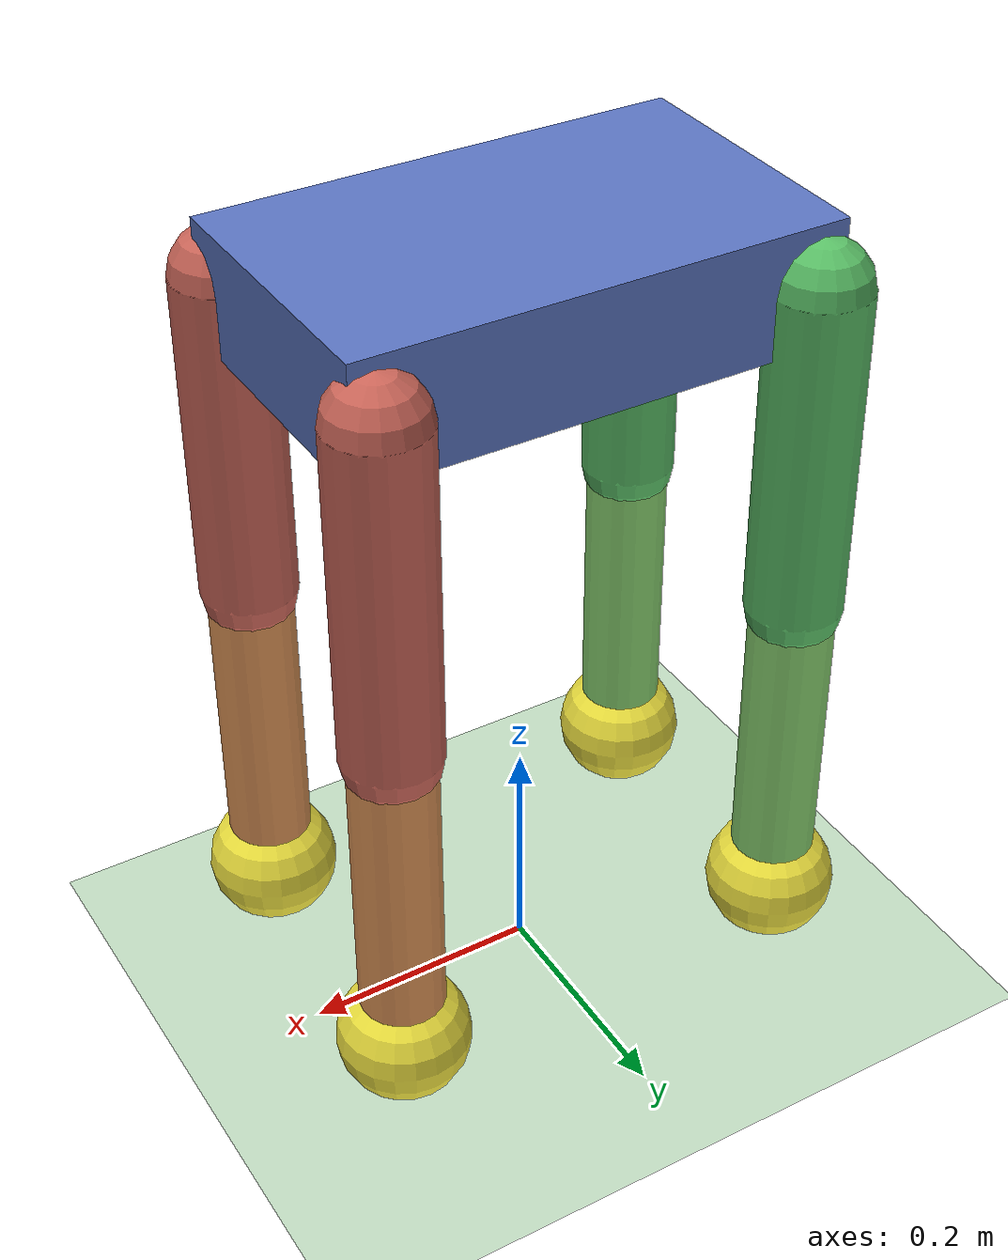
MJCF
<mujoco model="crawler">

  <compiler angle="degree"/>

  <option timestep="0.005" integrator="RK4" gravity="0 0 -9.81"/>

  <default>
    <joint limited="true" damping="0.8" armature="0.01" stiffness="0"/>
    <geom condim="3" friction="1.2 0.005 0.0001" density="1000"
          contype="0" conaffinity="0"/>
    <motor ctrllimited="true" ctrlrange="-1 1" gear="120"/>
  </default>

  <worldbody>
    <light name="sun" pos="0 0 6" dir="0 0 -1" diffuse="1 1 1" specular="0.3 0.3 0.3"/>
    <geom name="floor" type="plane" size="50 50 0.1"
          rgba="0.75 0.85 0.75 1" contype="1" conaffinity="1"/>

    <!-- ── Torso ──────────────────────────────────────────────────────── -->
    <body name="torso" pos="0 0 0.65">
      <freejoint name="root"/>
      <geom name="torso_geom" type="box" size="0.2 0.12 0.05"
            mass="4" rgba="0.35 0.45 0.75 1"
            contype="1" conaffinity="0"/>

      <!-- ── Front-Left leg ──────────────────────────────────────────── -->
      <body name="fl_upper" pos="0.18 0.12 0">
        <joint name="fl_hip" type="hinge" axis="0 1 0" range="-70 70"/>
        <geom type="capsule" fromto="0 0 0  0 0 -0.28"
              size="0.04" mass="0.4" rgba="0.80 0.40 0.35 1"/>
        <body name="fl_lower" pos="0 0 -0.28">
          <joint name="fl_knee" type="hinge" axis="0 1 0" range="-80 10"/>
          <geom type="capsule" fromto="0 0 0  0 0 -0.28"
                size="0.035" mass="0.3" rgba="0.90 0.60 0.35 1"/>
          <geom name="fl_foot" type="sphere" pos="0 0 -0.29"
                size="0.055" mass="0.1" rgba="0.95 0.90 0.25 1"
                contype="1" conaffinity="0"/>
        </body>
      </body>

      <!-- ── Front-Right leg ─────────────────────────────────────────── -->
      <body name="fr_upper" pos="0.18 -0.12 0">
        <joint name="fr_hip" type="hinge" axis="0 1 0" range="-70 70"/>
        <geom type="capsule" fromto="0 0 0  0 0 -0.28"
              size="0.04" mass="0.4" rgba="0.80 0.40 0.35 1"/>
        <body name="fr_lower" pos="0 0 -0.28">
          <joint name="fr_knee" type="hinge" axis="0 1 0" range="-80 10"/>
          <geom type="capsule" fromto="0 0 0  0 0 -0.28"
                size="0.035" mass="0.3" rgba="0.90 0.60 0.35 1"/>
          <geom name="fr_foot" type="sphere" pos="0 0 -0.29"
                size="0.055" mass="0.1" rgba="0.95 0.90 0.25 1"
                contype="1" conaffinity="0"/>
        </body>
      </body>

      <!-- ── Back-Left leg ───────────────────────────────────────────── -->
      <body name="bl_upper" pos="-0.18 0.12 0">
        <joint name="bl_hip" type="hinge" axis="0 1 0" range="-70 70"/>
        <geom type="capsule" fromto="0 0 0  0 0 -0.28"
              size="0.04" mass="0.4" rgba="0.35 0.75 0.40 1"/>
        <body name="bl_lower" pos="0 0 -0.28">
          <joint name="bl_knee" type="hinge" axis="0 1 0" range="-80 10"/>
          <geom type="capsule" fromto="0 0 0  0 0 -0.28"
                size="0.035" mass="0.3" rgba="0.55 0.85 0.45 1"/>
          <geom name="bl_foot" type="sphere" pos="0 0 -0.29"
                size="0.055" mass="0.1" rgba="0.95 0.90 0.25 1"
                contype="1" conaffinity="0"/>
        </body>
      </body>

      <!-- ── Back-Right leg ──────────────────────────────────────────── -->
      <body name="br_upper" pos="-0.18 -0.12 0">
        <joint name="br_hip" type="hinge" axis="0 1 0" range="-70 70"/>
        <geom type="capsule" fromto="0 0 0  0 0 -0.28"
              size="0.04" mass="0.4" rgba="0.35 0.75 0.40 1"/>
        <body name="br_lower" pos="0 0 -0.28">
          <joint name="br_knee" type="hinge" axis="0 1 0" range="-80 10"/>
          <geom type="capsule" fromto="0 0 0  0 0 -0.28"
                size="0.035" mass="0.3" rgba="0.55 0.85 0.45 1"/>
          <geom name="br_foot" type="sphere" pos="0 0 -0.29"
                size="0.055" mass="0.1" rgba="0.95 0.90 0.25 1"
                contype="1" conaffinity="0"/>
        </body>
      </body>

    </body>
  </worldbody>

  <!-- 8 motors, one per joint, ordered fl → fr → bl → br, hip before knee -->
  <actuator>
    <motor name="fl_hip_m"  joint="fl_hip"/>
    <motor name="fl_knee_m" joint="fl_knee"/>
    <motor name="fr_hip_m"  joint="fr_hip"/>
    <motor name="fr_knee_m" joint="fr_knee"/>
    <motor name="bl_hip_m"  joint="bl_hip"/>
    <motor name="bl_knee_m" joint="bl_knee"/>
    <motor name="br_hip_m"  joint="br_hip"/>
    <motor name="br_knee_m" joint="br_knee"/>
  </actuator>

</mujoco>
